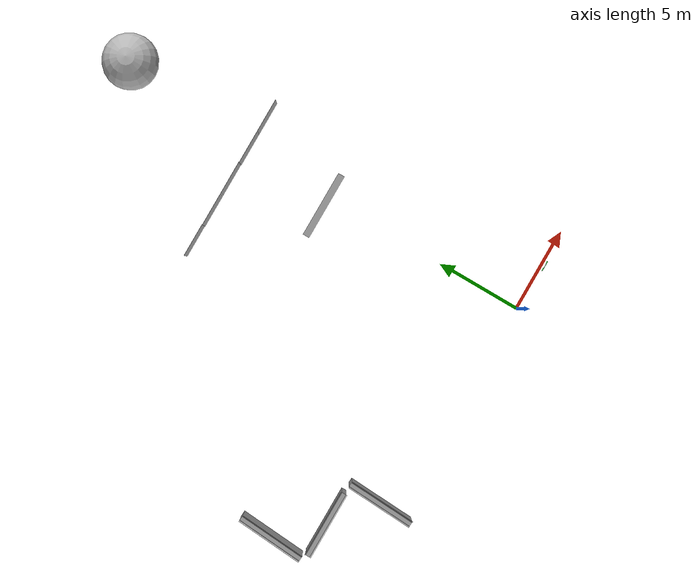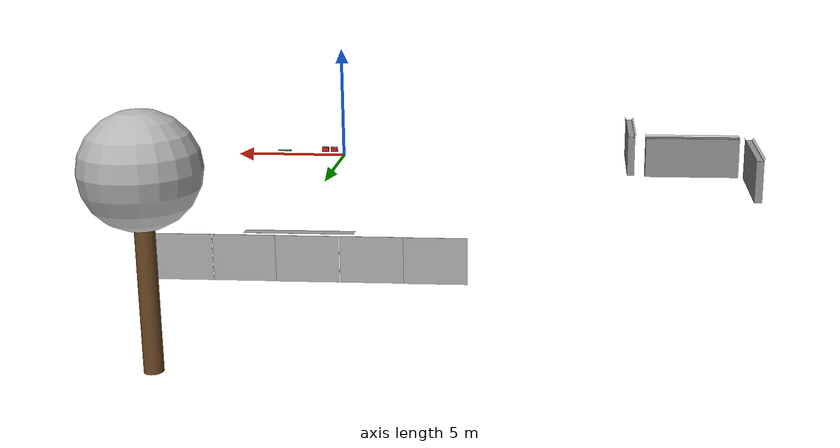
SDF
<sdf version="1.6">
 <world name="default">
  <model name="brick_red_4">
   <static>1</static>
   <link name="link">
    <pose>0 0 0.1 0 -0 0</pose>
    <inertial>
     <mass>1</mass>
     <inertia>
      <ixx>0.00252984</ixx>
      <ixy>0</ixy>
      <ixz>0</ixz>
      <iyy>0.046802</iyy>
      <iyz>0</iyz>
      <izz>0.046802</izz>
     </inertia>
    </inertial>
    <visual name="main_box">
     <geometry><box><size>0.3 0.2 0.2</size></box></geometry>
     <material>
      <script><uri>file://media/materials/scripts/gazebo.material</uri><name>Gazebo/Red</name></script>
     </material>
    </visual>
    <visual name="white_plate">
     <pose>0 0 0.1 0 -0 0</pose>
     <geometry><box><size>0.3 0.15 0.006</size></box></geometry>
     <material>
      <script><uri>file://media/materials/scripts/gazebo.material</uri><name>Gazebo/White</name></script>
     </material>
    </visual>
    <collision name="collision"><geometry><box><size>0.3 0.2 0.2</size></box></geometry></collision>
   </link>
   <pose>0.455353 0.037849 0 0 0 -0.001435</pose>
  </model>
  <model name="brick_red_5">
   <static>1</static>
   <link name="link">
    <pose>0 0 0.1 0 -0 0</pose>
    <inertial>
     <mass>1</mass>
     <inertia>
      <ixx>0.00252984</ixx>
      <ixy>0</ixy>
      <ixz>0</ixz>
      <iyy>0.046802</iyy>
      <iyz>0</iyz>
      <izz>0.046802</izz>
     </inertia>
    </inertial>
    <visual name="main_box">
     <geometry><box><size>0.3 0.2 0.2</size></box></geometry>
     <material>
      <script><uri>file://media/materials/scripts/gazebo.material</uri><name>Gazebo/Red</name></script>
     </material>
    </visual>
    <visual name="white_plate">
     <pose>0 0 0.1 0 -0 0</pose>
     <geometry><box><size>0.3 0.15 0.006</size></box></geometry>
     <material>
      <script><uri>file://media/materials/scripts/gazebo.material</uri><name>Gazebo/White</name></script>
     </material>
    </visual>
    <collision name="collision"><geometry><box><size>0.3 0.2 0.2</size></box></geometry></collision>
   </link>
   <pose>0.469063 0.037849 0.202 0 0 -0.003653</pose>
  </model>
  <model name="brick_red_10">
   <static>1</static>
   <link name="link">
    <pose>0 0 0.1 0 -0 0</pose>
    <inertial>
     <mass>1</mass>
     <inertia>
      <ixx>0.00252984</ixx>
      <ixy>0</ixy>
      <ixz>0</ixz>
      <iyy>0.046802</iyy>
      <iyz>0</iyz>
      <izz>0.046802</izz>
     </inertia>
    </inertial>
    <visual name="main_box">
     <geometry><box><size>0.3 0.2 0.2</size></box></geometry>
     <material>
      <script><uri>file://media/materials/scripts/gazebo.material</uri><name>Gazebo/Red</name></script>
     </material>
    </visual>
    <visual name="white_plate">
     <pose>0 0 0.1 0 -0 0</pose>
     <geometry><box><size>0.3 0.15 0.006</size></box></geometry>
     <material>
      <script><uri>file://media/materials/scripts/gazebo.material</uri><name>Gazebo/White</name></script>
     </material>
    </visual>
    <collision name="collision"><geometry><box><size>0.3 0.2 0.2</size></box></geometry></collision>
   </link>
   <pose>0.868164 0.037849 -0 0 0 -0.012876</pose>
  </model>
  <model name="brick_red_11">
   <static>1</static>
   <link name="link">
    <pose>0 0 0.1 0 -0 0</pose>
    <inertial>
     <mass>1</mass>
     <inertia>
      <ixx>0.00252984</ixx>
      <ixy>0</ixy>
      <ixz>0</ixz>
      <iyy>0.046802</iyy>
      <iyz>0</iyz>
      <izz>0.046802</izz>
     </inertia>
    </inertial>
    <visual name="main_box">
     <geometry><box><size>0.3 0.2 0.2</size></box></geometry>
     <material>
      <script><uri>file://media/materials/scripts/gazebo.material</uri><name>Gazebo/Red</name></script>
     </material>
    </visual>
    <visual name="white_plate">
     <pose>0 0 0.1 0 -0 0</pose>
     <geometry><box><size>0.3 0.15 0.006</size></box></geometry>
     <material>
      <script><uri>file://media/materials/scripts/gazebo.material</uri><name>Gazebo/White</name></script>
     </material>
    </visual>
    <collision name="collision"><geometry><box><size>0.3 0.2 0.2</size></box></geometry></collision>
   </link>
   <pose>0.879277 0.037849 0.202 0 -0 0.014297</pose>
  </model>
  <model name="brick_green_25">
   <static>1</static>
   <link name="link">
    <pose>0 0 0.1 0 -0 0</pose>
    <inertial>
     <mass>1</mass>
     <inertia>
      <ixx>0.00252984</ixx>
      <ixy>0</ixy>
      <ixz>0</ixz>
      <iyy>0.046802</iyy>
      <iyz>0</iyz>
      <izz>0.046802</izz>
     </inertia>
    </inertial>
    <visual name="main_box">
     <geometry><box><size>0.6 0.2 0.2</size></box></geometry>
     <material>
      <script><uri>file://media/materials/scripts/gazebo.material</uri><name>Gazebo/Green</name></script>
     </material>
    </visual>
    <visual name="white_plate">
     <pose>0 0 0.1 0 -0 0</pose>
     <geometry><box><size>0.3 0.15 0.006</size></box></geometry>
     <material>
      <script><uri>file://media/materials/scripts/gazebo.material</uri><name>Gazebo/White</name></script>
     </material>
    </visual>
    <collision name="collision"><geometry><box><size>0.6 0.2 0.2</size></box></geometry></collision>
   </link>
   <pose>2.86276 -0.090797 0 0 -0 0.001473</pose>
  </model>
  <model name="mbzirc_ugv_assembly_wall">
   <static>1</static>
   <link name="link">
    <pose>0 0 0.003 0 -0 0</pose>
    <collision name="collision_top_plate"><geometry><box><size>4 0.4 0.003</size></box></geometry></collision>
    <visual name="visual_top_plate">
     <geometry><box><size>4 0.4 0.003</size></box></geometry>
     <material>
      <script><name>Gazebo/Grey</name><uri>file://media/materials/scripts/gazebo.material</uri></script>
     </material>
    </visual>
   </link>
   <pose>-0.455359 12.3643 0 0 -0 0</pose>
  </model>
  <model name="mbzirc_uav_assembly_wall_0">
   <static>1</static>
   <link name="link">
    <pose>0 0 0.85 0 -0 0</pose>
    <collision name="collision_wall"><geometry><box><size>4 0.3 1.7</size></box></geometry></collision>
    <visual name="visual_wall">
     <geometry><box><size>4 0.3 1.7</size></box></geometry>
     <material>
      <script>
       <uri>model://mbzirc_uav_assembly_wall/materials/scripts</uri>
       <uri>model://mbzirc_uav_assembly_wall/materials/textures</uri>
       <name>vrc/grey_wall</name>
      </script>
     </material>
    </visual>
    <visual name="visual_top_plate">
     <pose>0 0 0.85 0 -0 0</pose>
     <geometry><box><size>4 0.3 0.005</size></box></geometry>
     <material>
      <script><name>Gazebo/Grey</name><uri>file://media/materials/scripts/gazebo.material</uri></script>
     </material>
    </visual>
    <collision name="collision_front_channel">
     <pose>0 0.158 0.9 -0.643 0 0</pose>
     <geometry><box><size>4 0.005 0.125</size></box></geometry>
    </collision>
    <visual name="visual_front_channel">
     <pose>0 0.158 0.9 -0.643 0 0</pose>
     <geometry><box><size>4 0.005 0.125</size></box></geometry>
     <material>
      <script><name>Gazebo/GreyTransparent</name><uri>file://media/materials/scripts/gazebo.material</uri></script>
     </material>
    </visual>
    <collision name="collision_back_channel">
     <pose>0 -0.158 0.9 0.643 -0 0</pose>
     <geometry><box><size>4 0.005 0.125</size></box></geometry>
    </collision>
    <visual name="visual_back_channel">
     <pose>0 -0.158 0.9 0.643 -0 0</pose>
     <geometry><box><size>4 0.005 0.125</size></box></geometry>
     <material>
      <script><name>Gazebo/GreyTransparent</name><uri>file://media/materials/scripts/gazebo.material</uri></script>
     </material>
    </visual>
   </link>
   <pose>-15.7499 3.30262 0 0 -0 0</pose>
  </model>
  <model name="mbzirc_uav_assembly_wall_1">
   <static>1</static>
   <link name="link">
    <pose>0 0 0.85 0 -0 0</pose>
    <collision name="collision_wall"><geometry><box><size>4 0.3 1.7</size></box></geometry></collision>
    <visual name="visual_wall">
     <geometry><box><size>4 0.3 1.7</size></box></geometry>
     <material>
      <script>
       <uri>model://mbzirc_uav_assembly_wall/materials/scripts</uri>
       <uri>model://mbzirc_uav_assembly_wall/materials/textures</uri>
       <name>vrc/grey_wall</name>
      </script>
     </material>
    </visual>
    <visual name="visual_top_plate">
     <pose>0 0 0.85 0 -0 0</pose>
     <geometry><box><size>4 0.3 0.005</size></box></geometry>
     <material>
      <script><name>Gazebo/Grey</name><uri>file://media/materials/scripts/gazebo.material</uri></script>
     </material>
    </visual>
    <collision name="collision_front_channel">
     <pose>0 0.158 0.9 -0.643 0 0</pose>
     <geometry><box><size>4 0.005 0.125</size></box></geometry>
    </collision>
    <visual name="visual_front_channel">
     <pose>0 0.158 0.9 -0.643 0 0</pose>
     <geometry><box><size>4 0.005 0.125</size></box></geometry>
     <material>
      <script><name>Gazebo/GreyTransparent</name><uri>file://media/materials/scripts/gazebo.material</uri></script>
     </material>
    </visual>
    <collision name="collision_back_channel">
     <pose>0 -0.158 0.9 0.643 -0 0</pose>
     <geometry><box><size>4 0.005 0.125</size></box></geometry>
    </collision>
    <visual name="visual_back_channel">
     <pose>0 -0.158 0.9 0.643 -0 0</pose>
     <geometry><box><size>4 0.005 0.125</size></box></geometry>
     <material>
      <script><name>Gazebo/GreyTransparent</name><uri>file://media/materials/scripts/gazebo.material</uri></script>
     </material>
    </visual>
   </link>
   <pose>-13.2553 1.24634 0 0 0 -1.62678</pose>
  </model>
  <model name="mbzirc_uav_assembly_wall_2">
   <static>1</static>
   <link name="link">
    <pose>0 0 0.85 0 -0 0</pose>
    <collision name="collision_wall"><geometry><box><size>4 0.3 1.7</size></box></geometry></collision>
    <visual name="visual_wall">
     <geometry><box><size>4 0.3 1.7</size></box></geometry>
     <material>
      <script>
       <uri>model://mbzirc_uav_assembly_wall/materials/scripts</uri>
       <uri>model://mbzirc_uav_assembly_wall/materials/textures</uri>
       <name>vrc/grey_wall</name>
      </script>
     </material>
    </visual>
    <visual name="visual_top_plate">
     <pose>0 0 0.85 0 -0 0</pose>
     <geometry><box><size>4 0.3 0.005</size></box></geometry>
     <material>
      <script><name>Gazebo/Grey</name><uri>file://media/materials/scripts/gazebo.material</uri></script>
     </material>
    </visual>
    <collision name="collision_front_channel">
     <pose>0 0.158 0.9 -0.643 0 0</pose>
     <geometry><box><size>4 0.005 0.125</size></box></geometry>
    </collision>
    <visual name="visual_front_channel">
     <pose>0 0.158 0.9 -0.643 0 0</pose>
     <geometry><box><size>4 0.005 0.125</size></box></geometry>
     <material>
      <script><name>Gazebo/GreyTransparent</name><uri>file://media/materials/scripts/gazebo.material</uri></script>
     </material>
    </visual>
    <collision name="collision_back_channel">
     <pose>0 -0.158 0.9 0.643 -0 0</pose>
     <geometry><box><size>4 0.005 0.125</size></box></geometry>
    </collision>
    <visual name="visual_back_channel">
     <pose>0 -0.158 0.9 0.643 -0 0</pose>
     <geometry><box><size>4 0.005 0.125</size></box></geometry>
     <material>
      <script><name>Gazebo/GreyTransparent</name><uri>file://media/materials/scripts/gazebo.material</uri></script>
     </material>
    </visual>
   </link>
   <pose>-17.9469 5.55155 -0 0 0 -1.64712</pose>
  </model>
  <model name="tree_simple">
   <static>1</static>
   <link name="link">
    <pose>0 0 0.1 0 -0 0</pose>
    <inertial>
     <mass>666</mass>
     <inertia>
      <ixx>0.0861167</ixx>
      <ixy>0</ixy>
      <ixz>0</ixz>
      <iyy>0.0861167</iyy>
      <iyz>0</iyz>
      <izz>0.0861167</izz>
     </inertia>
    </inertial>
    <collision name="collision_trunk">
     <pose>0 0 2 0 -0 0</pose>
     <geometry><cylinder><radius>0.25</radius><length>4</length></cylinder></geometry>
     <surface>
      <contact>
       <poissons_ratio>0.347</poissons_ratio>
       <elastic_modulus>8.8e+09</elastic_modulus>
       <ode><kp>100000</kp><kd>100</kd><max_vel>100</max_vel><min_depth>0.001</min_depth></ode>
      </contact>
      <friction>
       <torsional>
        <coefficient>1</coefficient>
        <use_patch_radius>0</use_patch_radius>
        <surface_radius>0.01</surface_radius>
       </torsional>
      </friction>
     </surface>
    </collision>
    <collision name="collision_treetop">
     <pose>0 0 5.2 0 -0 0</pose>
     <geometry><sphere><radius>1.5</radius></sphere></geometry>
     <surface>
      <contact>
       <poissons_ratio>0.347</poissons_ratio>
       <elastic_modulus>8.8e+09</elastic_modulus>
       <ode><kp>100000</kp><kd>100</kd><max_vel>100</max_vel><min_depth>0.001</min_depth></ode>
      </contact>
      <friction>
       <torsional>
        <coefficient>1</coefficient>
        <use_patch_radius>0</use_patch_radius>
        <surface_radius>0.01</surface_radius>
       </torsional>
      </friction>
     </surface>
    </collision>
    <visual name="trunk">
     <pose>0 0 2 0 -0 0</pose>
     <geometry><cylinder><radius>0.25</radius><length>4</length></cylinder></geometry>
     <material>
      <script>
       <uri>model://tree_simple/scripts</uri>
       <uri>model://tree_simple/materials/textures</uri>
       <name>TreeSimple/Trunk</name>
      </script>
     </material>
    </visual>
    <visual name="treetop">
     <pose>0 0 5.2 0 -0 0</pose>
     <geometry><sphere><radius>1.5</radius></sphere></geometry>
     <material>
      <script>
       <uri>model://tree_simple/scripts</uri>
       <uri>model://tree_simple/materials/textures</uri>
       <name>TreeSimple/Treetop</name>
      </script>
     </material>
    </visual>
   </link>
   <pose>0.648139 24.6479 0 0 -0 0</pose>
  </model>
  <model name="artificial_wall_0">
   <static>1</static>
   <link name="link">
    <pose>0 0 0.75 0 -0 0</pose>
    <inertial>
     <mass>0.5167</mass>
     <inertia>
      <ixx>0.000861167</ixx>
      <ixy>0</ixy>
      <ixz>0</ixz>
      <iyy>0.000861167</iyy>
      <iyz>0</iyz>
      <izz>0.000861167</izz>
     </inertia>
    </inertial>
    <collision name="collision">
     <geometry><box><size>2 0.01 1.5</size></box></geometry>
     <surface>
      <contact>
       <poissons_ratio>0.347</poissons_ratio>
       <elastic_modulus>8.8e+09</elastic_modulus>
       <ode><kp>100000</kp><kd>100</kd><max_vel>100</max_vel><min_depth>0.001</min_depth></ode>
      </contact>
      <friction>
       <torsional>
        <coefficient>1</coefficient>
        <use_patch_radius>0</use_patch_radius>
        <surface_radius>0.01</surface_radius>
       </torsional>
      </friction>
     </surface>
    </collision>
    <visual name="visual">
     <geometry><box><size>2 0.01 1.5</size></box></geometry>
     <material>
      <script>
       <uri>model://artificial_wall/scripts</uri>
       <uri>model://artificial_wall/materials/textures</uri>
       <name>ArtificialWall/Image</name>
      </script>
     </material>
    </visual>
   </link>
   <pose>2.18568 17.5557 0 0 -0 0</pose>
  </model>
  <model name="artificial_wall_1">
   <static>1</static>
   <link name="link">
    <pose>0 0 0.75 0 -0 0</pose>
    <inertial>
     <mass>0.5167</mass>
     <inertia>
      <ixx>0.000861167</ixx>
      <ixy>0</ixy>
      <ixz>0</ixz>
      <iyy>0.000861167</iyy>
      <iyz>0</iyz>
      <izz>0.000861167</izz>
     </inertia>
    </inertial>
    <collision name="collision">
     <geometry><box><size>2 0.01 1.5</size></box></geometry>
     <surface>
      <contact>
       <poissons_ratio>0.347</poissons_ratio>
       <elastic_modulus>8.8e+09</elastic_modulus>
       <ode><kp>100000</kp><kd>100</kd><max_vel>100</max_vel><min_depth>0.001</min_depth></ode>
      </contact>
      <friction>
       <torsional>
        <coefficient>1</coefficient>
        <use_patch_radius>0</use_patch_radius>
        <surface_radius>0.01</surface_radius>
       </torsional>
      </friction>
     </surface>
    </collision>
    <visual name="visual">
     <geometry><box><size>2 0.01 1.5</size></box></geometry>
     <material>
      <script>
       <uri>model://artificial_wall/scripts</uri>
       <uri>model://artificial_wall/materials/textures</uri>
       <name>ArtificialWall/Image</name>
      </script>
     </material>
    </visual>
   </link>
   <pose>0.160003 17.5553 0 0 -0 0</pose>
  </model>
  <model name="artificial_wall_2">
   <static>1</static>
   <link name="link">
    <pose>0 0 0.75 0 -0 0</pose>
    <inertial>
     <mass>0.5167</mass>
     <inertia>
      <ixx>0.000861167</ixx>
      <ixy>0</ixy>
      <ixz>0</ixz>
      <iyy>0.000861167</iyy>
      <iyz>0</iyz>
      <izz>0.000861167</izz>
     </inertia>
    </inertial>
    <collision name="collision">
     <geometry><box><size>2 0.01 1.5</size></box></geometry>
     <surface>
      <contact>
       <poissons_ratio>0.347</poissons_ratio>
       <elastic_modulus>8.8e+09</elastic_modulus>
       <ode><kp>100000</kp><kd>100</kd><max_vel>100</max_vel><min_depth>0.001</min_depth></ode>
      </contact>
      <friction>
       <torsional>
        <coefficient>1</coefficient>
        <use_patch_radius>0</use_patch_radius>
        <surface_radius>0.01</surface_radius>
       </torsional>
      </friction>
     </surface>
    </collision>
    <visual name="visual">
     <geometry><box><size>2 0.01 1.5</size></box></geometry>
     <material>
      <script>
       <uri>model://artificial_wall/scripts</uri>
       <uri>model://artificial_wall/materials/textures</uri>
       <name>ArtificialWall/Image</name>
      </script>
     </material>
    </visual>
   </link>
   <pose>-1.82337 17.5776 0 0 -0 0</pose>
  </model>
  <model name="artificial_wall_3">
   <static>1</static>
   <link name="link">
    <pose>0 0 0.75 0 -0 0</pose>
    <inertial>
     <mass>0.5167</mass>
     <inertia>
      <ixx>0.000861167</ixx>
      <ixy>0</ixy>
      <ixz>0</ixz>
      <iyy>0.000861167</iyy>
      <iyz>0</iyz>
      <izz>0.000861167</izz>
     </inertia>
    </inertial>
    <collision name="collision">
     <geometry><box><size>2 0.01 1.5</size></box></geometry>
     <surface>
      <contact>
       <poissons_ratio>0.347</poissons_ratio>
       <elastic_modulus>8.8e+09</elastic_modulus>
       <ode><kp>100000</kp><kd>100</kd><max_vel>100</max_vel><min_depth>0.001</min_depth></ode>
      </contact>
      <friction>
       <torsional>
        <coefficient>1</coefficient>
        <use_patch_radius>0</use_patch_radius>
        <surface_radius>0.01</surface_radius>
       </torsional>
      </friction>
     </surface>
    </collision>
    <visual name="visual">
     <geometry><box><size>2 0.01 1.5</size></box></geometry>
     <material>
      <script>
       <uri>model://artificial_wall/scripts</uri>
       <uri>model://artificial_wall/materials/textures</uri>
       <name>ArtificialWall/Image</name>
      </script>
     </material>
    </visual>
   </link>
   <pose>-3.85422 17.5772 0 0 -0 0</pose>
  </model>
  <model name="artificial_wall_4">
   <static>1</static>
   <link name="link">
    <pose>0 0 0.75 0 -0 0</pose>
    <inertial>
     <mass>0.5167</mass>
     <inertia>
      <ixx>0.000861167</ixx>
      <ixy>0</ixy>
      <ixz>0</ixz>
      <iyy>0.000861167</iyy>
      <iyz>0</iyz>
      <izz>0.000861167</izz>
     </inertia>
    </inertial>
    <collision name="collision">
     <geometry><box><size>2 0.01 1.5</size></box></geometry>
     <surface>
      <contact>
       <poissons_ratio>0.347</poissons_ratio>
       <elastic_modulus>8.8e+09</elastic_modulus>
       <ode><kp>100000</kp><kd>100</kd><max_vel>100</max_vel><min_depth>0.001</min_depth></ode>
      </contact>
      <friction>
       <torsional>
        <coefficient>1</coefficient>
        <use_patch_radius>0</use_patch_radius>
        <surface_radius>0.01</surface_radius>
       </torsional>
      </friction>
     </surface>
    </collision>
    <visual name="visual">
     <geometry><box><size>2 0.01 1.5</size></box></geometry>
     <material>
      <script>
       <uri>model://artificial_wall/scripts</uri>
       <uri>model://artificial_wall/materials/textures</uri>
       <name>ArtificialWall/Image</name>
      </script>
     </material>
    </visual>
   </link>
   <pose>-5.84241 17.599 0 0 -0 0</pose>
  </model>
 </world>
</sdf>
